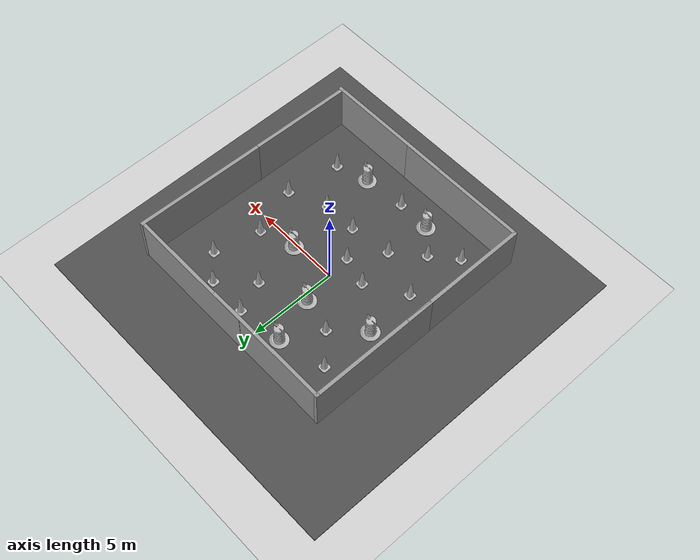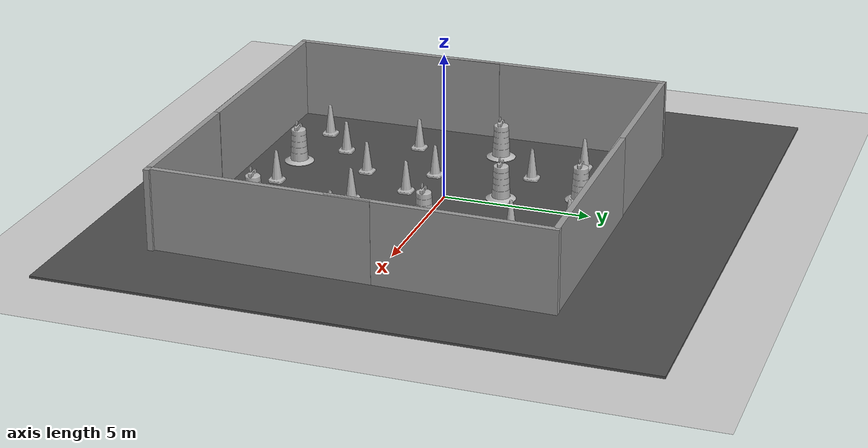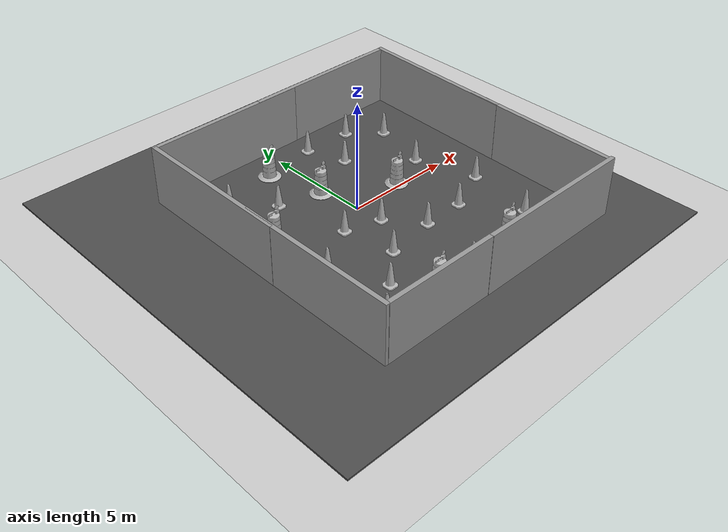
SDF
<sdf version="1.7">
 <world name="default">
  <light name="sun" type="directional">
   <pose>0 0 10 0 -0 0</pose>
   <diffuse>0.8 0.8 0.8 1</diffuse>
   <specular>0.2 0.2 0.2 1</specular>
   <attenuation>
    <range>1000</range>
    <constant>0.9</constant>
    <linear>0.01</linear>
    <quadratic>0.001</quadratic>
   </attenuation>
   <direction>-0.5 0.1 -0.9</direction>
   <spot><inner_angle>0</inner_angle><outer_angle>0</outer_angle><falloff>0</falloff></spot>
  </light>
  <model name="ground_plane">
   <static>1</static>
   <link name="link">
    <collision name="collision">
     <geometry><plane><normal>0 0 1</normal><size>100 100</size></plane></geometry>
     <surface><friction><ode><mu>100</mu><mu2>50</mu2></ode></friction></surface>
    </collision>
    <visual name="visual">
     <cast_shadows>0</cast_shadows>
     <geometry><plane><normal>0 0 1</normal><size>100 100</size></plane></geometry>
     <material>
      <script><uri>file://media/materials/scripts/gazebo.material</uri><name>Gazebo/Grey</name></script>
     </material>
    </visual>
   </link>
  </model>
  <gravity>0 0 -9.8</gravity>
  <magnetic_field>6e-06 2.3e-05 -4.2e-05</magnetic_field>
  <atmosphere type="adiabatic"/>
  <physics type="ode">
   <max_step_size>0.001</max_step_size>
   <real_time_factor>1</real_time_factor>
   <real_time_update_rate>1000</real_time_update_rate>
  </physics>
  <scene><ambient>0.4 0.4 0.4 1</ambient><background>0.7 0.7 0.7 1</background><shadows>1</shadows></scene>
  <audio><device>default</device></audio>
  <spherical_coordinates>
   <surface_model>EARTH_WGS84</surface_model>
   <latitude_deg>0</latitude_deg>
   <longitude_deg>0</longitude_deg>
   <elevation>0</elevation>
   <heading_deg>0</heading_deg>
  </spherical_coordinates>
  <model name="asphalt_plane">
   <static>1</static>
   <link name="link">
    <collision name="collision"><geometry><box><size>20 20 0.1</size></box></geometry></collision>
    <visual name="visual">
     <cast_shadows>0</cast_shadows>
     <geometry><box><size>20 20 0.1</size></box></geometry>
     <material>
      <script>
       <uri>model://asphalt_plane/materials/scripts</uri>
       <uri>model://asphalt_plane/materials/textures</uri>
       <name>vrc/asphalt</name>
      </script>
     </material>
    </visual>
   </link>
   <pose>0.040546 0.013115 0 0 -0 0</pose>
  </model>
  <model name="grey_wall">
   <static>1</static>
   <link name="link">
    <pose>0 0 1.4 0 -0 0</pose>
    <collision name="collision"><geometry><box><size>7.5 0.2 2.8</size></box></geometry></collision>
    <visual name="visual">
     <cast_shadows>0</cast_shadows>
     <geometry><box><size>7.5 0.2 2.8</size></box></geometry>
     <material>
      <script>
       <uri>model://grey_wall/materials/scripts</uri>
       <uri>model://grey_wall/materials/textures</uri>
       <name>vrc/grey_wall</name>
      </script>
     </material>
    </visual>
   </link>
   <pose>-1.84419 -7.28335 -0 0 -0 0</pose>
  </model>
  <model name="grey_wall_0">
   <static>1</static>
   <link name="link">
    <pose>0 0 1.4 0 -0 0</pose>
    <collision name="collision"><geometry><box><size>7.5 0.2 2.8</size></box></geometry></collision>
    <visual name="visual">
     <cast_shadows>0</cast_shadows>
     <geometry><box><size>7.5 0.2 2.8</size></box></geometry>
     <material>
      <script>
       <uri>model://grey_wall/materials/scripts</uri>
       <uri>model://grey_wall/materials/textures</uri>
       <name>vrc/grey_wall</name>
      </script>
     </material>
    </visual>
   </link>
   <pose>-2.01094 5.95791 0 0 -0 0</pose>
  </model>
  <model name="grey_wall_1">
   <static>1</static>
   <link name="link">
    <pose>0 0 1.4 0 -0 0</pose>
    <collision name="collision"><geometry><box><size>7.5 0.2 2.8</size></box></geometry></collision>
    <visual name="visual">
     <cast_shadows>0</cast_shadows>
     <geometry><box><size>7.5 0.2 2.8</size></box></geometry>
     <material>
      <script>
       <uri>model://grey_wall/materials/scripts</uri>
       <uri>model://grey_wall/materials/textures</uri>
       <name>vrc/grey_wall</name>
      </script>
     </material>
    </visual>
   </link>
   <pose>7.17784 2.33722 0 0 0 -1.59452</pose>
  </model>
  <model name="grey_wall_2">
   <static>1</static>
   <link name="link">
    <pose>0 0 1.4 0 -0 0</pose>
    <collision name="collision"><geometry><box><size>7.5 0.2 2.8</size></box></geometry></collision>
    <visual name="visual">
     <cast_shadows>0</cast_shadows>
     <geometry><box><size>7.5 0.2 2.8</size></box></geometry>
     <material>
      <script>
       <uri>model://grey_wall/materials/scripts</uri>
       <uri>model://grey_wall/materials/textures</uri>
       <name>vrc/grey_wall</name>
      </script>
     </material>
    </visual>
   </link>
   <pose>-5.66464 2.32486 0 0 0 -1.57051</pose>
  </model>
  <model name="grey_wall_3">
   <static>1</static>
   <link name="link">
    <pose>0 0 1.4 0 -0 0</pose>
    <collision name="collision"><geometry><box><size>7.5 0.2 2.8</size></box></geometry></collision>
    <visual name="visual">
     <cast_shadows>0</cast_shadows>
     <geometry><box><size>7.5 0.2 2.8</size></box></geometry>
     <material>
      <script>
       <uri>model://grey_wall/materials/scripts</uri>
       <uri>model://grey_wall/materials/textures</uri>
       <name>vrc/grey_wall</name>
      </script>
     </material>
    </visual>
   </link>
   <pose>-5.64973 -3.62023 0 0 0 -1.56838</pose>
  </model>
  <model name="grey_wall_4">
   <static>1</static>
   <link name="link">
    <pose>0 0 1.4 0 -0 0</pose>
    <collision name="collision"><geometry><box><size>7.5 0.2 2.8</size></box></geometry></collision>
    <visual name="visual">
     <cast_shadows>0</cast_shadows>
     <geometry><box><size>7.5 0.2 2.8</size></box></geometry>
     <material>
      <script>
       <uri>model://grey_wall/materials/scripts</uri>
       <uri>model://grey_wall/materials/textures</uri>
       <name>vrc/grey_wall</name>
      </script>
     </material>
    </visual>
   </link>
   <pose>3.49607 5.97125 0 0 -0 0</pose>
  </model>
  <model name="grey_wall_5">
   <static>1</static>
   <link name="link">
    <pose>0 0 1.4 0 -0 0</pose>
    <collision name="collision"><geometry><box><size>7.5 0.2 2.8</size></box></geometry></collision>
    <visual name="visual">
     <cast_shadows>0</cast_shadows>
     <geometry><box><size>7.5 0.2 2.8</size></box></geometry>
     <material>
      <script>
       <uri>model://grey_wall/materials/scripts</uri>
       <uri>model://grey_wall/materials/textures</uri>
       <name>vrc/grey_wall</name>
      </script>
     </material>
    </visual>
   </link>
   <pose>3.41326 -7.29441 0 0 -0 0</pose>
  </model>
  <model name="grey_wall_6">
   <static>1</static>
   <link name="link">
    <pose>0 0 1.4 0 -0 0</pose>
    <collision name="collision"><geometry><box><size>7.5 0.2 2.8</size></box></geometry></collision>
    <visual name="visual">
     <cast_shadows>0</cast_shadows>
     <geometry><box><size>7.5 0.2 2.8</size></box></geometry>
     <material>
      <script>
       <uri>model://grey_wall/materials/scripts</uri>
       <uri>model://grey_wall/materials/textures</uri>
       <name>vrc/grey_wall</name>
      </script>
     </material>
    </visual>
   </link>
   <pose>7.04964 -3.60865 0 0 0 -1.59189</pose>
  </model>
  <model name="Construction Cone">
   <link name="link">
    <collision name="collision">
     <geometry>
      <mesh><scale>10 10 10</scale><uri>model://construction_cone/meshes/construction_cone.dae</uri></mesh>
     </geometry>
    </collision>
    <visual name="visual">
     <geometry>
      <mesh><scale>10 10 10</scale><uri>model://construction_cone/meshes/construction_cone.dae</uri></mesh>
     </geometry>
    </visual>
    <inertial>
     <inertia><ixx>1</ixx><ixy>0</ixy><ixz>0</ixz><iyy>1</iyy><iyz>0</iyz><izz>1</izz></inertia>
     <mass>1</mass>
    </inertial>
   </link>
   <pose>-2.57649 -4.48635 0.05 0 -0 0</pose>
  </model>
  <model name="Construction Cone_0">
   <link name="link">
    <collision name="collision">
     <geometry>
      <mesh><scale>10 10 10</scale><uri>model://construction_cone/meshes/construction_cone.dae</uri></mesh>
     </geometry>
    </collision>
    <visual name="visual">
     <geometry>
      <mesh><scale>10 10 10</scale><uri>model://construction_cone/meshes/construction_cone.dae</uri></mesh>
     </geometry>
    </visual>
    <inertial>
     <inertia><ixx>1</ixx><ixy>0</ixy><ixz>0</ixz><iyy>1</iyy><iyz>0</iyz><izz>1</izz></inertia>
     <mass>1</mass>
    </inertial>
   </link>
   <pose>4.84832 -4.99356 0.05 0 -0 0</pose>
  </model>
  <model name="Construction Cone_1">
   <link name="link">
    <collision name="collision">
     <geometry>
      <mesh><scale>10 10 10</scale><uri>model://construction_cone/meshes/construction_cone.dae</uri></mesh>
     </geometry>
    </collision>
    <visual name="visual">
     <geometry>
      <mesh><scale>10 10 10</scale><uri>model://construction_cone/meshes/construction_cone.dae</uri></mesh>
     </geometry>
    </visual>
    <inertial>
     <inertia><ixx>1</ixx><ixy>0</ixy><ixz>0</ixz><iyy>1</iyy><iyz>0</iyz><izz>1</izz></inertia>
     <mass>1</mass>
    </inertial>
   </link>
   <pose>5.03152 3.48563 0.05 0 -0 0</pose>
  </model>
  <model name="Construction Cone_2">
   <link name="link">
    <collision name="collision">
     <geometry>
      <mesh><scale>10 10 10</scale><uri>model://construction_cone/meshes/construction_cone.dae</uri></mesh>
     </geometry>
    </collision>
    <visual name="visual">
     <geometry>
      <mesh><scale>10 10 10</scale><uri>model://construction_cone/meshes/construction_cone.dae</uri></mesh>
     </geometry>
    </visual>
    <inertial>
     <inertia><ixx>1</ixx><ixy>0</ixy><ixz>0</ixz><iyy>1</iyy><iyz>0</iyz><izz>1</izz></inertia>
     <mass>1</mass>
    </inertial>
   </link>
   <pose>3.22853 -2.76929 0.049991 0 -1e-06 0</pose>
  </model>
  <model name="Construction Cone_3">
   <link name="link">
    <collision name="collision">
     <geometry>
      <mesh><scale>10 10 10</scale><uri>model://construction_cone/meshes/construction_cone.dae</uri></mesh>
     </geometry>
    </collision>
    <visual name="visual">
     <geometry>
      <mesh><scale>10 10 10</scale><uri>model://construction_cone/meshes/construction_cone.dae</uri></mesh>
     </geometry>
    </visual>
    <inertial>
     <inertia><ixx>1</ixx><ixy>0</ixy><ixz>0</ixz><iyy>1</iyy><iyz>0</iyz><izz>1</izz></inertia>
     <mass>1</mass>
    </inertial>
   </link>
   <pose>0.660568 -5.75029 0.05 0 -0 0</pose>
  </model>
  <model name="Construction Cone_4">
   <link name="link">
    <collision name="collision">
     <geometry>
      <mesh><scale>10 10 10</scale><uri>model://construction_cone/meshes/construction_cone.dae</uri></mesh>
     </geometry>
    </collision>
    <visual name="visual">
     <geometry>
      <mesh><scale>10 10 10</scale><uri>model://construction_cone/meshes/construction_cone.dae</uri></mesh>
     </geometry>
    </visual>
    <inertial>
     <inertia><ixx>1</ixx><ixy>0</ixy><ixz>0</ixz><iyy>1</iyy><iyz>0</iyz><izz>1</izz></inertia>
     <mass>1</mass>
    </inertial>
   </link>
   <pose>-1.0524 -3.14494 0.049991 -1e-06 -0 -0</pose>
  </model>
  <model name="Construction Barrel">
   <link name="link">
    <inertial>
     <pose>0 0 0.4 0 -0 0</pose>
     <mass>500</mass>
     <inertia><ixx>51.2096</ixx><iyy>51.2096</iyy><izz>25</izz><ixy>0</ixy><ixz>0</ixz><iyz>0</iyz></inertia>
    </inertial>
    <collision name="collision">
     <geometry><mesh><uri>model://construction_barrel/meshes/construction_barrel.dae</uri></mesh></geometry>
    </collision>
    <visual name="visual">
     <geometry><mesh><uri>model://construction_barrel/meshes/construction_barrel.dae</uri></mesh></geometry>
    </visual>
   </link>
   <pose>2.52579 0.189948 0.049999 4e-06 -0 0.0001</pose>
  </model>
  <model name="Construction Cone_5">
   <link name="link">
    <collision name="collision">
     <geometry>
      <mesh><scale>10 10 10</scale><uri>model://construction_cone/meshes/construction_cone.dae</uri></mesh>
     </geometry>
    </collision>
    <visual name="visual">
     <geometry>
      <mesh><scale>10 10 10</scale><uri>model://construction_cone/meshes/construction_cone.dae</uri></mesh>
     </geometry>
    </visual>
    <inertial>
     <inertia><ixx>1</ixx><ixy>0</ixy><ixz>0</ixz><iyy>1</iyy><iyz>0</iyz><izz>1</izz></inertia>
     <mass>1</mass>
    </inertial>
   </link>
   <pose>-2.30161 2.35118 0.050001 0 -3e-06 0</pose>
  </model>
  <model name="Construction Barrel_0">
   <link name="link">
    <inertial>
     <pose>0 0 0.4 0 -0 0</pose>
     <mass>500</mass>
     <inertia><ixx>51.2096</ixx><iyy>51.2096</iyy><izz>25</izz><ixy>0</ixy><ixz>0</ixz><iyz>0</iyz></inertia>
    </inertial>
    <collision name="collision">
     <geometry><mesh><uri>model://construction_barrel/meshes/construction_barrel.dae</uri></mesh></geometry>
    </collision>
    <visual name="visual">
     <geometry><mesh><uri>model://construction_barrel/meshes/construction_barrel.dae</uri></mesh></geometry>
    </visual>
   </link>
   <pose>-1.23001 -5.71354 0.049999 -1e-06 -3e-06 9.1e-05</pose>
  </model>
  <model name="Construction Barrel_1">
   <link name="link">
    <inertial>
     <pose>0 0 0.4 0 -0 0</pose>
     <mass>500</mass>
     <inertia><ixx>51.2096</ixx><iyy>51.2096</iyy><izz>25</izz><ixy>0</ixy><ixz>0</ixz><iyz>0</iyz></inertia>
    </inertial>
    <collision name="collision">
     <geometry><mesh><uri>model://construction_barrel/meshes/construction_barrel.dae</uri></mesh></geometry>
    </collision>
    <visual name="visual">
     <geometry><mesh><uri>model://construction_barrel/meshes/construction_barrel.dae</uri></mesh></geometry>
    </visual>
   </link>
   <pose>-1.11669 4.38679 0.049999 3e-06 -0 8.7e-05</pose>
  </model>
  <model name="Construction Cone_6">
   <link name="link">
    <collision name="collision">
     <geometry>
      <mesh><scale>10 10 10</scale><uri>model://construction_cone/meshes/construction_cone.dae</uri></mesh>
     </geometry>
    </collision>
    <visual name="visual">
     <geometry>
      <mesh><scale>10 10 10</scale><uri>model://construction_cone/meshes/construction_cone.dae</uri></mesh>
     </geometry>
    </visual>
    <inertial>
     <inertia><ixx>1</ixx><ixy>0</ixy><ixz>0</ixz><iyy>1</iyy><iyz>0</iyz><izz>1</izz></inertia>
     <mass>1</mass>
    </inertial>
   </link>
   <pose>-3.89379 -5.61656 0.049992 -3e-06 1e-06 0</pose>
  </model>
  <model name="Construction Barrel_2">
   <link name="link">
    <inertial>
     <pose>0 0 0.4 0 -0 0</pose>
     <mass>500</mass>
     <inertia><ixx>51.2096</ixx><iyy>51.2096</iyy><izz>25</izz><ixy>0</ixy><ixz>0</ixz><iyz>0</iyz></inertia>
    </inertial>
    <collision name="collision">
     <geometry><mesh><uri>model://construction_barrel/meshes/construction_barrel.dae</uri></mesh></geometry>
    </collision>
    <visual name="visual">
     <geometry><mesh><uri>model://construction_barrel/meshes/construction_barrel.dae</uri></mesh></geometry>
    </visual>
   </link>
   <pose>3.06182 -5.54245 0.049999 -1e-06 -2e-06 8e-05</pose>
  </model>
  <model name="Construction Barrel_3">
   <link name="link">
    <inertial>
     <pose>0 0 0.4 0 -0 0</pose>
     <mass>500</mass>
     <inertia><ixx>51.2096</ixx><iyy>51.2096</iyy><izz>25</izz><ixy>0</ixy><ixz>0</ixz><iyz>0</iyz></inertia>
    </inertial>
    <collision name="collision">
     <geometry><mesh><uri>model://construction_barrel/meshes/construction_barrel.dae</uri></mesh></geometry>
    </collision>
    <visual name="visual">
     <geometry><mesh><uri>model://construction_barrel/meshes/construction_barrel.dae</uri></mesh></geometry>
    </visual>
   </link>
   <pose>-3.84143 0.766084 0.049999 -1e-06 -2e-06 7.5e-05</pose>
  </model>
  <model name="Construction Cone_7">
   <link name="link">
    <collision name="collision">
     <geometry>
      <mesh><scale>10 10 10</scale><uri>model://construction_cone/meshes/construction_cone.dae</uri></mesh>
     </geometry>
    </collision>
    <visual name="visual">
     <geometry>
      <mesh><scale>10 10 10</scale><uri>model://construction_cone/meshes/construction_cone.dae</uri></mesh>
     </geometry>
    </visual>
    <inertial>
     <inertia><ixx>1</ixx><ixy>0</ixy><ixz>0</ixz><iyy>1</iyy><iyz>0</iyz><izz>1</izz></inertia>
     <mass>1</mass>
    </inertial>
   </link>
   <pose>1.28509 -2.80943 0.05 0 -0 0</pose>
  </model>
  <model name="Construction Cone_8">
   <link name="link">
    <collision name="collision">
     <geometry>
      <mesh><scale>10 10 10</scale><uri>model://construction_cone/meshes/construction_cone.dae</uri></mesh>
     </geometry>
    </collision>
    <visual name="visual">
     <geometry>
      <mesh><scale>10 10 10</scale><uri>model://construction_cone/meshes/construction_cone.dae</uri></mesh>
     </geometry>
    </visual>
    <inertial>
     <inertia><ixx>1</ixx><ixy>0</ixy><ixz>0</ixz><iyy>1</iyy><iyz>0</iyz><izz>1</izz></inertia>
     <mass>1</mass>
    </inertial>
   </link>
   <pose>5.31221 -1.90289 0.05 0 -0 -1e-06</pose>
  </model>
  <model name="Construction Cone_9">
   <link name="link">
    <collision name="collision">
     <geometry>
      <mesh><scale>10 10 10</scale><uri>model://construction_cone/meshes/construction_cone.dae</uri></mesh>
     </geometry>
    </collision>
    <visual name="visual">
     <geometry>
      <mesh><scale>10 10 10</scale><uri>model://construction_cone/meshes/construction_cone.dae</uri></mesh>
     </geometry>
    </visual>
    <inertial>
     <inertia><ixx>1</ixx><ixy>0</ixy><ixz>0</ixz><iyy>1</iyy><iyz>0</iyz><izz>1</izz></inertia>
     <mass>1</mass>
    </inertial>
   </link>
   <pose>4.41044 0.84647 0.05 0 -0 0</pose>
  </model>
  <model name="Construction Cone_10">
   <link name="link">
    <collision name="collision">
     <geometry>
      <mesh><scale>10 10 10</scale><uri>model://construction_cone/meshes/construction_cone.dae</uri></mesh>
     </geometry>
    </collision>
    <visual name="visual">
     <geometry>
      <mesh><scale>10 10 10</scale><uri>model://construction_cone/meshes/construction_cone.dae</uri></mesh>
     </geometry>
    </visual>
    <inertial>
     <inertia><ixx>1</ixx><ixy>0</ixy><ixz>0</ixz><iyy>1</iyy><iyz>0</iyz><izz>1</izz></inertia>
     <mass>1</mass>
    </inertial>
   </link>
   <pose>2.06631 2.97374 0.05 -1e-06 -0 -0</pose>
  </model>
  <model name="Construction Barrel_4">
   <link name="link">
    <inertial>
     <pose>0 0 0.4 0 -0 0</pose>
     <mass>500</mass>
     <inertia><ixx>51.2096</ixx><iyy>51.2096</iyy><izz>25</izz><ixy>0</ixy><ixz>0</ixz><iyz>0</iyz></inertia>
    </inertial>
    <collision name="collision">
     <geometry><mesh><uri>model://construction_barrel/meshes/construction_barrel.dae</uri></mesh></geometry>
    </collision>
    <visual name="visual">
     <geometry><mesh><uri>model://construction_barrel/meshes/construction_barrel.dae</uri></mesh></geometry>
    </visual>
   </link>
   <pose>-0.364784 1.86718 0.049999 -1e-06 -3e-06 6.1e-05</pose>
  </model>
  <model name="Construction Cone_11">
   <link name="link">
    <collision name="collision">
     <geometry>
      <mesh><scale>10 10 10</scale><uri>model://construction_cone/meshes/construction_cone.dae</uri></mesh>
     </geometry>
    </collision>
    <visual name="visual">
     <geometry>
      <mesh><scale>10 10 10</scale><uri>model://construction_cone/meshes/construction_cone.dae</uri></mesh>
     </geometry>
    </visual>
    <inertial>
     <inertia><ixx>1</ixx><ixy>0</ixy><ixz>0</ixz><iyy>1</iyy><iyz>0</iyz><izz>1</izz></inertia>
     <mass>1</mass>
    </inertial>
   </link>
   <pose>-3.65191 -2.17341 0.05 0 -0 0</pose>
  </model>
  <model name="Construction Cone_12">
   <link name="link">
    <collision name="collision">
     <geometry>
      <mesh><scale>10 10 10</scale><uri>model://construction_cone/meshes/construction_cone.dae</uri></mesh>
     </geometry>
    </collision>
    <visual name="visual">
     <geometry>
      <mesh><scale>10 10 10</scale><uri>model://construction_cone/meshes/construction_cone.dae</uri></mesh>
     </geometry>
    </visual>
    <inertial>
     <inertia><ixx>1</ixx><ixy>0</ixy><ixz>0</ixz><iyy>1</iyy><iyz>0</iyz><izz>1</izz></inertia>
     <mass>1</mass>
    </inertial>
   </link>
   <pose>-3.765 3.78077 0.05 -0 -0 -0.000256</pose>
  </model>
  <model name="Construction Cone_13">
   <link name="link">
    <collision name="collision">
     <geometry>
      <mesh><scale>10 10 10</scale><uri>model://construction_cone/meshes/construction_cone.dae</uri></mesh>
     </geometry>
    </collision>
    <visual name="visual">
     <geometry>
      <mesh><scale>10 10 10</scale><uri>model://construction_cone/meshes/construction_cone.dae</uri></mesh>
     </geometry>
    </visual>
    <inertial>
     <inertia><ixx>1</ixx><ixy>0</ixy><ixz>0</ixz><iyy>1</iyy><iyz>0</iyz><izz>1</izz></inertia>
     <mass>1</mass>
    </inertial>
   </link>
   <pose>0.102818 -1.30846 0.05 0 -0 0</pose>
  </model>
  <model name="Construction Cone_14">
   <link name="link">
    <collision name="collision">
     <geometry>
      <mesh><scale>10 10 10</scale><uri>model://construction_cone/meshes/construction_cone.dae</uri></mesh>
     </geometry>
    </collision>
    <visual name="visual">
     <geometry>
      <mesh><scale>10 10 10</scale><uri>model://construction_cone/meshes/construction_cone.dae</uri></mesh>
     </geometry>
    </visual>
    <inertial>
     <inertia><ixx>1</ixx><ixy>0</ixy><ixz>0</ixz><iyy>1</iyy><iyz>0</iyz><izz>1</izz></inertia>
     <mass>1</mass>
    </inertial>
   </link>
   <pose>-1.51897 -0.846044 0.05 0 -0 0</pose>
  </model>
  <model name="Construction Cone_15">
   <link name="link">
    <collision name="collision">
     <geometry>
      <mesh><scale>10 10 10</scale><uri>model://construction_cone/meshes/construction_cone.dae</uri></mesh>
     </geometry>
    </collision>
    <visual name="visual">
     <geometry>
      <mesh><scale>10 10 10</scale><uri>model://construction_cone/meshes/construction_cone.dae</uri></mesh>
     </geometry>
    </visual>
    <inertial>
     <inertia><ixx>1</ixx><ixy>0</ixy><ixz>0</ixz><iyy>1</iyy><iyz>0</iyz><izz>1</izz></inertia>
     <mass>1</mass>
    </inertial>
   </link>
   <pose>1.41553 4.73033 0.050001 4e-06 -2e-06 0</pose>
  </model>
  <model name="Construction Cone_16">
   <link name="link">
    <collision name="collision">
     <geometry>
      <mesh><scale>10 10 10</scale><uri>model://construction_cone/meshes/construction_cone.dae</uri></mesh>
     </geometry>
    </collision>
    <visual name="visual">
     <geometry>
      <mesh><scale>10 10 10</scale><uri>model://construction_cone/meshes/construction_cone.dae</uri></mesh>
     </geometry>
    </visual>
    <inertial>
     <inertia><ixx>1</ixx><ixy>0</ixy><ixz>0</ixz><iyy>1</iyy><iyz>0</iyz><izz>1</izz></inertia>
     <mass>1</mass>
    </inertial>
   </link>
   <pose>3.68257 4.65058 0.05 -0 -0 -0</pose>
  </model>
 </world>
</sdf>
